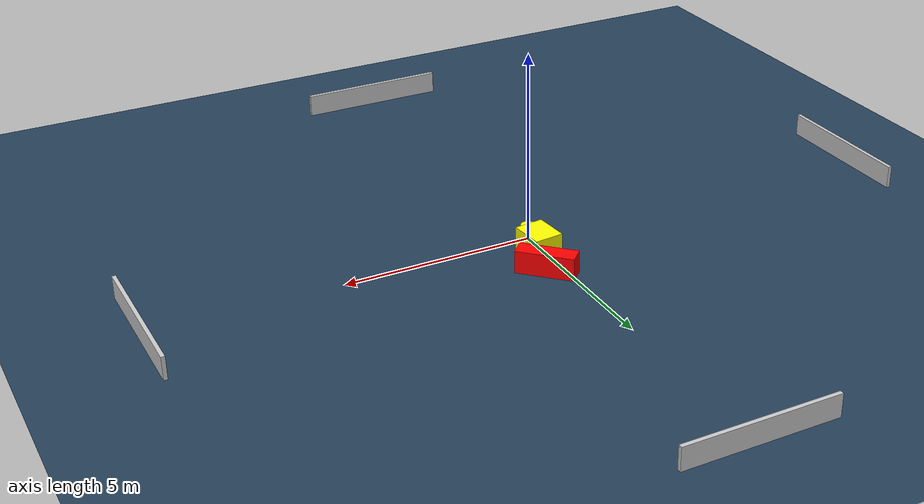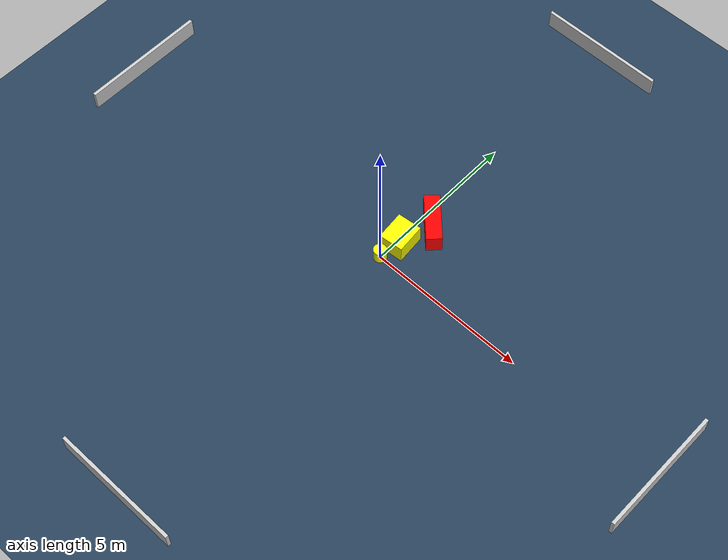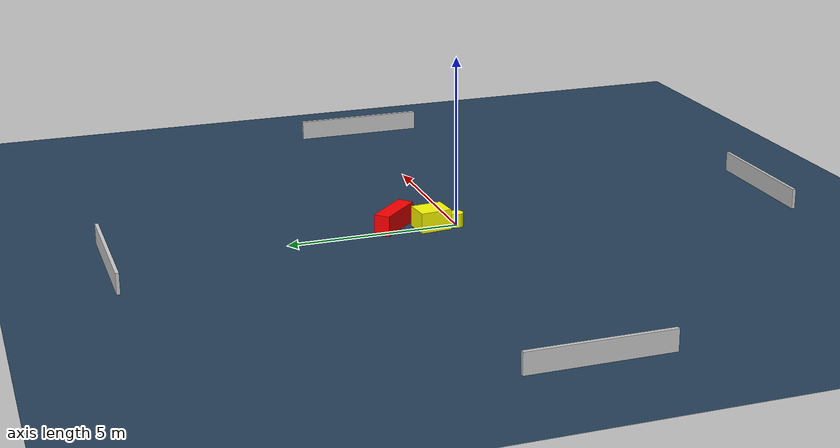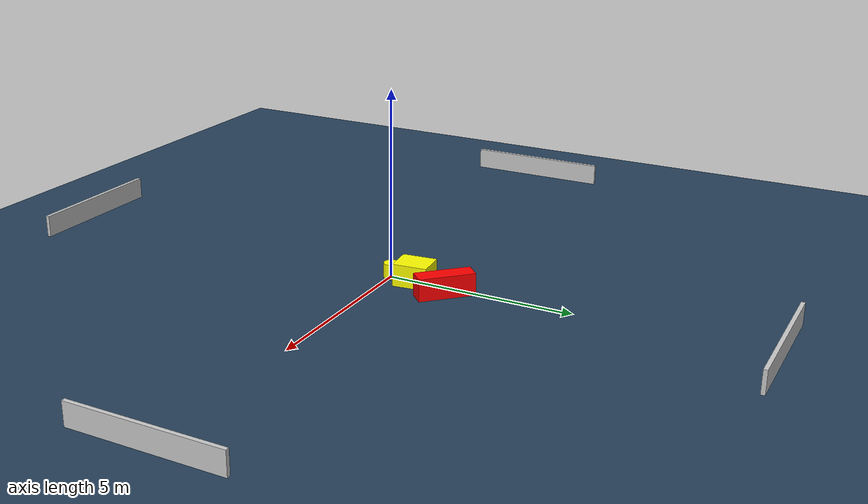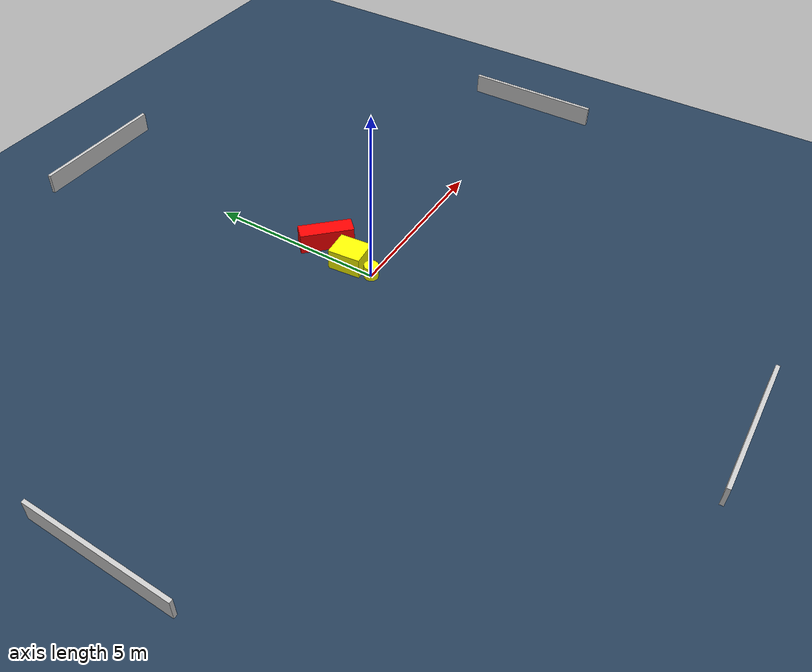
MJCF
<?xml version="1.0" ?>
<mujoco model="generated_environment">
  <option timestep="0.01" integrator="RK4" cone="elliptic"/>
  <default>
    <geom density="1"/>
  </default>
  <asset>
    <texture builtin="gradient" height="3072" name="skybox" rgb1="0.3 0.5 0.7" rgb2="0 0 0" type="skybox" width="512"/>
    <texture builtin="checker" height="300" name="groundplane" rgb1="0.2 0.3 0.4" rgb2="0.1 0.2 0.3" type="2d" width="300"/>
    <material name="groundplane" reflectance="0.2" texrepeat="5 5" texture="groundplane"/>
  </asset>
  <worldbody>
    <light dir="0 0 -1" directional="true" pos="0 0 1.5"/>
    <geom condim="3" friction="0.5 0.005 0.001" material="groundplane" name="floor" pos="0 0 0" size="0 0 0.05" type="plane"/>
    <body name="walls">
      <geom name="wall_1" condim="4" pos="-10.0 0.0 0.3" rgba="0.800000011920929 0.800000011920929 0.800000011920929 1.0" size="0.05 2.0 0.3" type="box"/>
      <geom name="wall_2" condim="4" pos="10.0 0.0 0.3" rgba="0.800000011920929 0.800000011920929 0.800000011920929 1.0" size="0.05 2.0 0.3" type="box"/>
      <geom name="wall_3" condim="4" pos="0.0 -10.0 0.3" rgba="0.800000011920929 0.800000011920929 0.800000011920929 1.0" size="2.0 0.05 0.3" type="box"/>
      <geom name="wall_4" condim="4" pos="0.0 10.0 0.3" rgba="0.800000011920929 0.800000011920929 0.800000011920929 1.0" size="2.0 0.05 0.3" type="box"/>
    </body>
    <body name="robot">
      <joint name="joint_x" type="slide" pos="0 0 0" axis="1 0 0"/>
      <joint name="joint_y" type="slide" pos="0 0 0" axis="0 1 0"/>
      <geom name="robot" type="cylinder" pos="0.0 0.0 0.2" size="0.2 0.2 0.0" mass="5.0" friction="1.0 0.005 0.0001" condim="4" rgba="1.0 1.0 0.0 1.0"/>
    </body>
    <body name="obstacle_1_movable">
      <geom name="obstacle_1_movable" condim="4" pos="0.09737303784401725 0.7367115169538495 0.3" euler="0 0 95.63040730826543" friction="0.0 0.005 0.001" rgba="1.0 1.0 0.0 1.0" size="0.4617104853611211 0.38450675237732634 0.3" type="box" mass="0.1"/>
      <joint type="free"/>
    </body>
    <body name="obstacle_2_static">
      <geom name="obstacle_2_static" condim="4" pos="0.4341678997842422 1.758019124505694 0.3" euler="0 0 224.99569803885612" friction="0.0 0.005 0.001" rgba="1.0 0.0 0.0 1.0" size="0.23753751025416625 0.7525750163398479 0.3" type="box"/>
    </body>
  </worldbody>
  <actuator>
    <motor name="actuator_x" joint="joint_x" gear="1" ctrlrange="-1 1"/>
    <motor name="actuator_y" joint="joint_y" gear="1" ctrlrange="-1 1"/>
  </actuator>
</mujoco>
